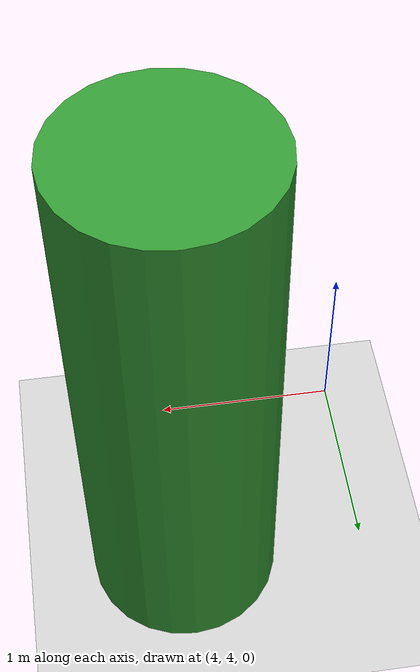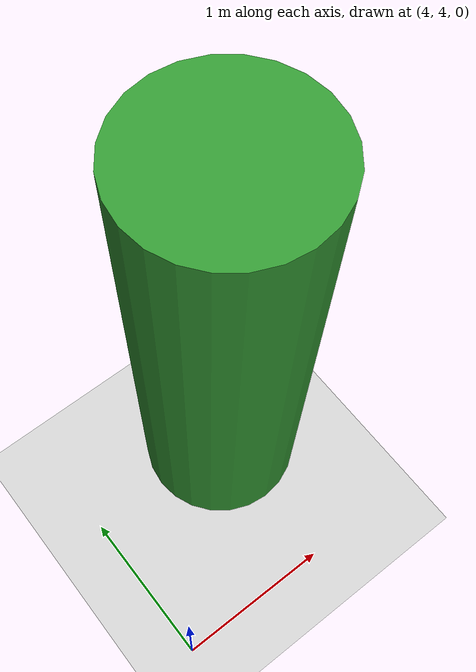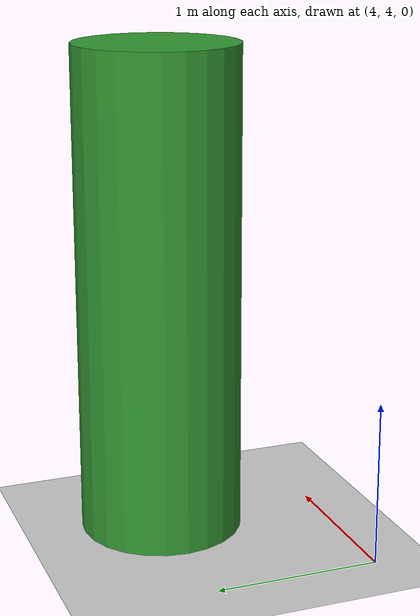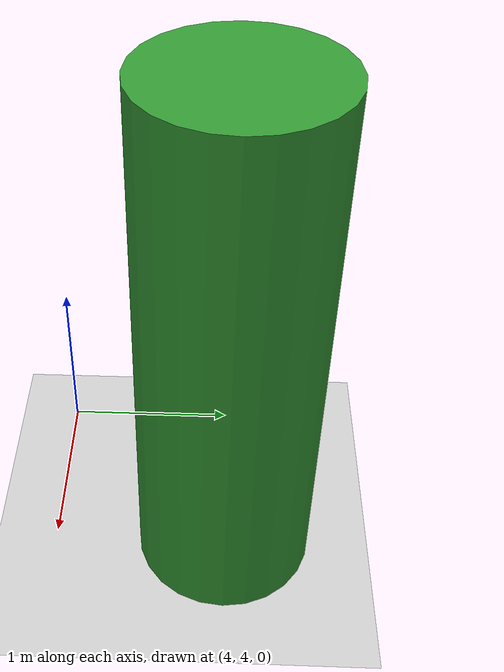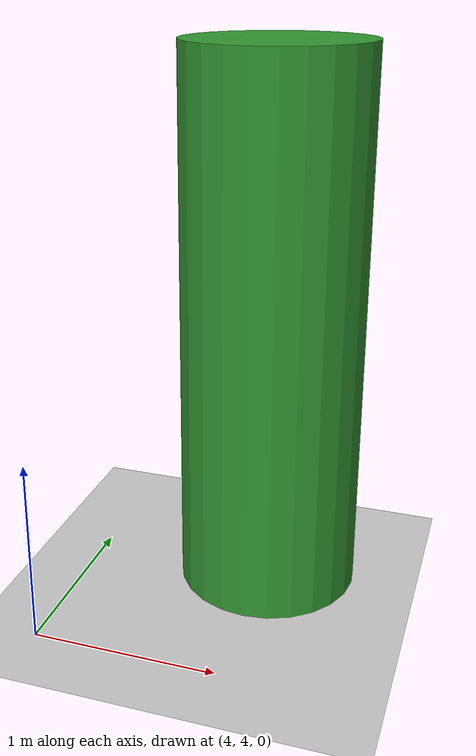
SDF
<?xml version="1.0" ?>
<sdf version="1.6">
  <world name="durian_orchard">

    <!-- Sun -->
    <include>
      <uri>model://sun</uri>
    </include>

    <!-- Ground -->
    <include>
      <uri>model://ground_plane</uri>
    </include>

    <!-- Tree Obstacle -->
    <model name="tree_1">
      <static>true</static>
      <pose>5 5 1.5 0 0 0</pose>

      <link name="link">
        <collision name="collision">
          <geometry>
            <cylinder>
              <radius>0.5</radius>
              <length>3</length>
            </cylinder>
          </geometry>
        </collision>

        <visual name="visual">
          <geometry>
            <cylinder>
              <radius>0.5</radius>
              <length>3</length>
            </cylinder>
          </geometry>

          <material>
            <ambient>0.2 0.6 0.2 1</ambient>
          </material>
        </visual>
      </link>
    </model>

  </world>
</sdf>
